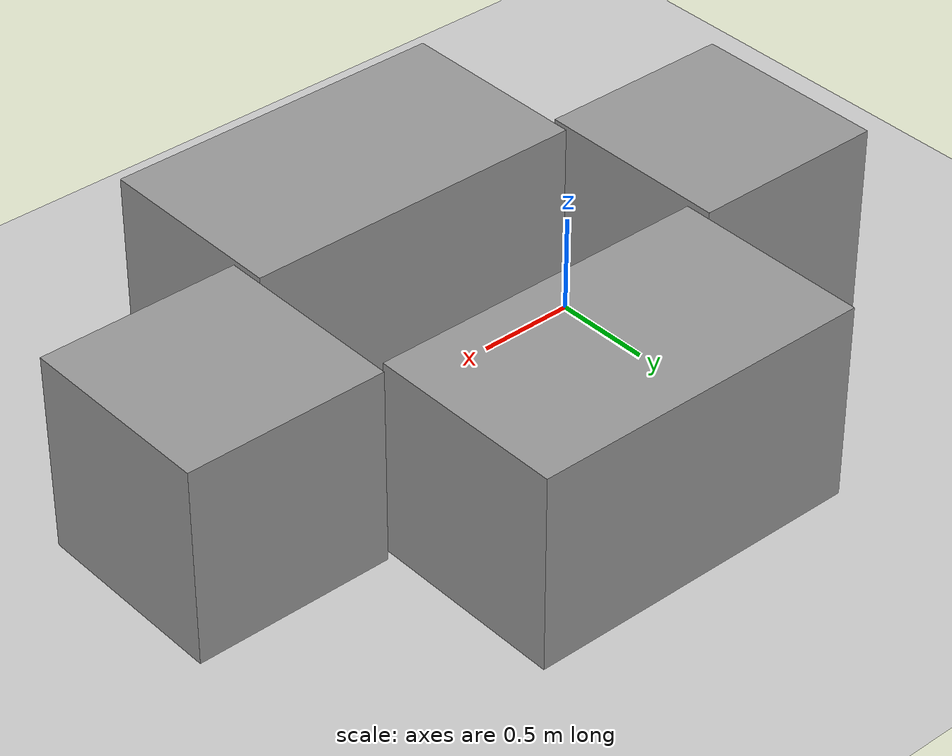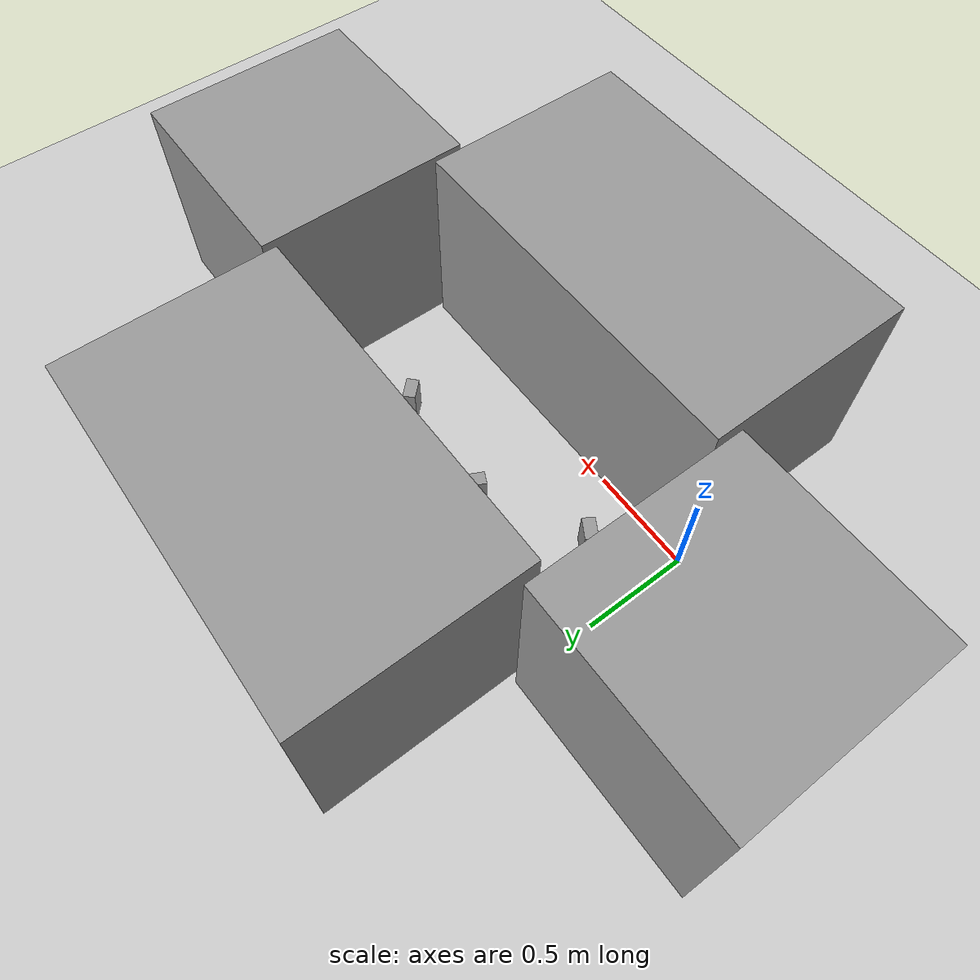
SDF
<sdf version="1.5">
 <world name="default">
  <light name="sun" type="directional">
   <pose>0 0 10 0 -0 0</pose>
   <diffuse>0.8 0.8 0.8 1</diffuse>
   <specular>0.2 0.2 0.2 1</specular>
   <attenuation>
    <range>1000</range>
    <constant>0.9</constant>
    <linear>0.01</linear>
    <quadratic>0.001</quadratic>
   </attenuation>
   <direction>-0.5 0.1 -0.9</direction>
  </light>
  <model name="ground_plane">
   <static>1</static>
   <link name="link">
    <collision name="collision">
     <geometry><plane><normal>0 0 1</normal><size>100 100</size></plane></geometry>
     <surface><friction><ode><mu>100</mu><mu2>50</mu2></ode></friction></surface>
    </collision>
    <visual name="visual">
     <cast_shadows>0</cast_shadows>
     <geometry><plane><normal>0 0 1</normal><size>100 100</size></plane></geometry>
     <material>
      <script><uri>file://media/materials/scripts/gazebo.material</uri><name>Gazebo/Grey</name></script>
     </material>
    </visual>
   </link>
  </model>
  <physics name="default_physics" default="0" type="ode">
   <max_step_size>0.001</max_step_size>
   <real_time_factor>1</real_time_factor>
   <real_time_update_rate>1000</real_time_update_rate>
   <gravity>0 0 -9.8</gravity>
   <magnetic_field>5.5645e-06 2.28758e-05 -4.23884e-05</magnetic_field>
  </physics>
  <scene><ambient>0.4 0.4 0.4 1</ambient><background>0.7 0.7 0.7 1</background><shadows>1</shadows></scene>
  <spherical_coordinates>
   <surface_model>EARTH_WGS84</surface_model>
   <latitude_deg>0</latitude_deg>
   <longitude_deg>0</longitude_deg>
   <elevation>0</elevation>
   <heading_deg>0</heading_deg>
  </spherical_coordinates>
  <model name="unit_box_2">
   <pose>-0.5 0.4 0.5 0 -0 0</pose>
   <link name="link">
    <inertial>
     <mass>1</mass>
     <inertia><ixx>1</ixx><ixy>0</ixy><ixz>0</ixz><iyy>1</iyy><iyz>0</iyz><izz>1</izz></inertia>
    </inertial>
    <collision name="collision"><geometry><box><size>1 1 1</size></box></geometry></collision>
    <visual name="visual">
     <geometry><box><size>1 1 1</size></box></geometry>
     <material>
      <script><uri>file://media/materials/scripts/gazebo.material</uri><name>Gazebo/Grey</name></script>
     </material>
    </visual>
   </link>
  </model>
  <model name="unit_box_3">
   <pose>2.3 0.35 0.5 0 -0 0</pose>
   <link name="link">
    <inertial>
     <mass>1</mass>
     <inertia><ixx>1</ixx><ixy>0</ixy><ixz>0</ixz><iyy>1</iyy><iyz>0</iyz><izz>1</izz></inertia>
    </inertial>
    <collision name="collision"><geometry><box><size>1 1 1</size></box></geometry></collision>
    <visual name="visual">
     <geometry><box><size>1 1 1</size></box></geometry>
     <material>
      <script><uri>file://media/materials/scripts/gazebo.material</uri><name>Gazebo/Grey</name></script>
     </material>
    </visual>
   </link>
  </model>
  <model name="unit_box_4">
   <pose>0.9 -0.5 0.5 0 -0 0</pose>
   <link name="link">
    <inertial>
     <mass>1</mass>
     <inertia><ixx>1</ixx><ixy>0</ixy><ixz>0</ixz><iyy>1</iyy><iyz>0</iyz><izz>1</izz></inertia>
    </inertial>
    <collision name="collision"><geometry><box><size>1.75504 1 1</size></box></geometry></collision>
    <visual name="visual">
     <geometry><box><size>1.75505 1 1</size></box></geometry>
     <material>
      <script><uri>file://media/materials/scripts/gazebo.material</uri><name>Gazebo/Grey</name></script>
     </material>
    </visual>
   </link>
  </model>
  <model name="unit_box_5">
   <pose>0.9 1.3 0.5 0 -0 0</pose>
   <link name="link">
    <inertial>
     <mass>1</mass>
     <inertia><ixx>1</ixx><ixy>0</ixy><ixz>0</ixz><iyy>1</iyy><iyz>0</iyz><izz>1</izz></inertia>
    </inertial>
    <collision name="collision"><geometry><box><size>1.73155 1 1</size></box></geometry></collision>
    <visual name="visual">
     <geometry><box><size>1.73155 1 1</size></box></geometry>
     <material>
      <script><uri>file://media/materials/scripts/gazebo.material</uri><name>Gazebo/Grey</name></script>
     </material>
    </visual>
   </link>
  </model>
  <model name="unit_box_6">
   <pose>0.774022 0.536916 0.100254 -0.004581 -0.002271 1.11112</pose>
   <link name="link">
    <inertial>
     <mass>1</mass>
     <inertia><ixx>1</ixx><ixy>0</ixy><ixz>0</ixz><iyy>1</iyy><iyz>0</iyz><izz>1</izz></inertia>
    </inertial>
    <collision name="collision"><geometry><box><size>0.1 0.06 0.2</size></box></geometry></collision>
    <visual name="visual">
     <geometry><box><size>0.1 0.06 0.2</size></box></geometry>
     <material>
      <script><uri>file://media/materials/scripts/gazebo.material</uri><name>Gazebo/Grey</name></script>
     </material>
    </visual>
   </link>
  </model>
  <model name="unit_box_6_clone">
   <pose>1.3401 0.487129 0.100254 0.003685 -0.003545 -0.804317</pose>
   <link name="link">
    <inertial>
     <mass>1</mass>
     <inertia><ixx>1</ixx><ixy>0</ixy><ixz>0</ixz><iyy>1</iyy><iyz>0</iyz><izz>1</izz></inertia>
    </inertial>
    <collision name="collision"><geometry><box><size>0.1 0.06 0.2</size></box></geometry></collision>
    <visual name="visual">
     <geometry><box><size>0.1 0.06 0.2</size></box></geometry>
     <material>
      <script><uri>file://media/materials/scripts/gazebo.material</uri><name>Gazebo/Grey</name></script>
     </material>
    </visual>
   </link>
  </model>
  <model name="unit_box_6_clone_0">
   <pose>0.289049 0.282509 0.100254 0.002651 -0.004372 -0.544566</pose>
   <link name="link">
    <inertial>
     <mass>1</mass>
     <inertia><ixx>1</ixx><ixy>0</ixy><ixz>0</ixz><iyy>1</iyy><iyz>0</iyz><izz>1</izz></inertia>
    </inertial>
    <collision name="collision"><geometry><box><size>0.1 0.06 0.2</size></box></geometry></collision>
    <visual name="visual">
     <geometry><box><size>0.1 0.06 0.2</size></box></geometry>
     <material>
      <script><uri>file://media/materials/scripts/gazebo.material</uri><name>Gazebo/Grey</name></script>
     </material>
    </visual>
   </link>
  </model>
 </world>
</sdf>
